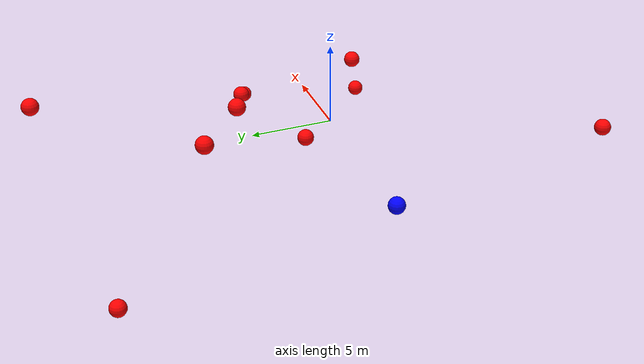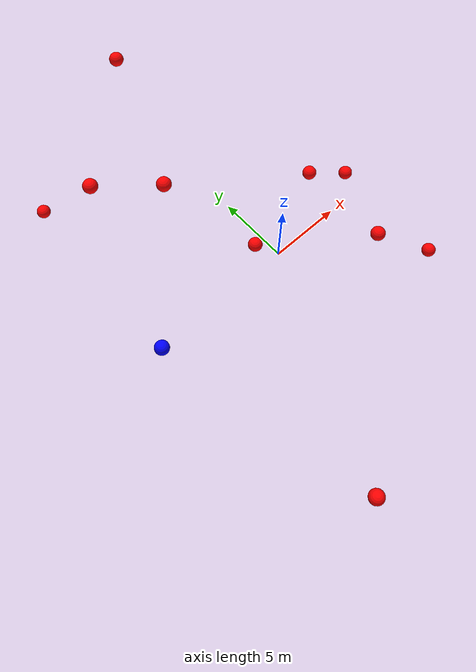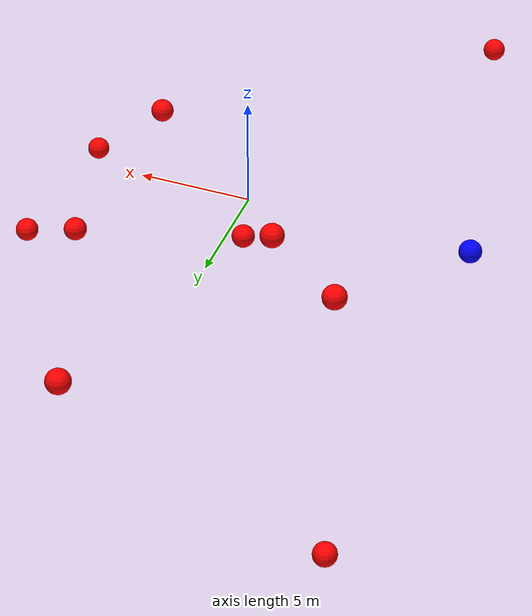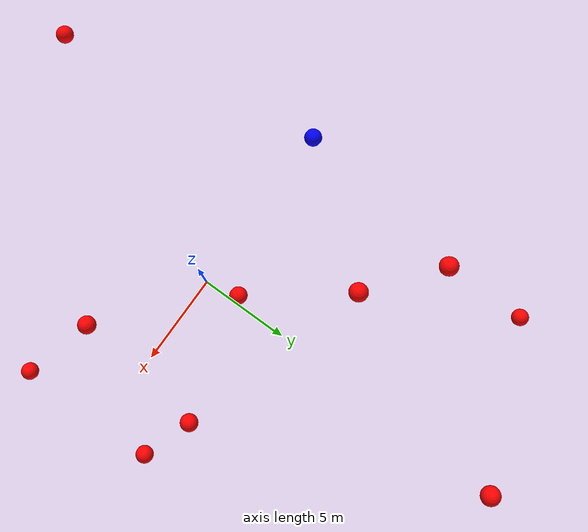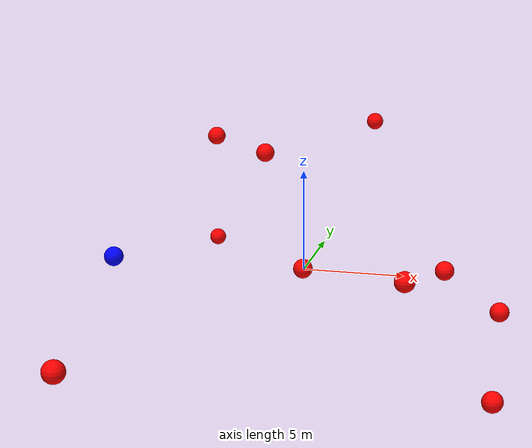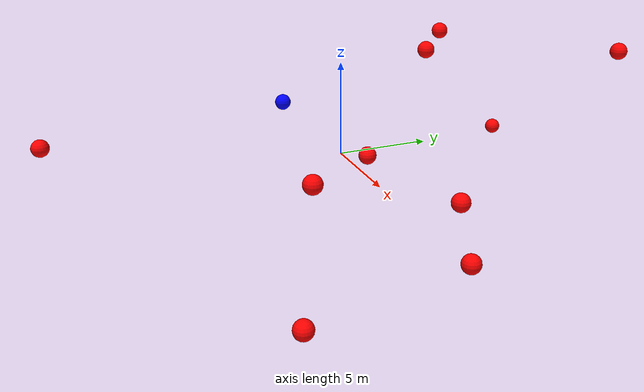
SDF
<?xml version="1.0" ?>
<sdf version="1.8">
    <world name="3d_world">
        <physics name="1ms" type="ode">
            <max_step_size>0.001</max_step_size>
            <real_time_factor>1.0</real_time_factor>
            <real_time_update_rate>1000.0</real_time_update_rate>
        </physics>
        <gravity>0 0 0</gravity>

        <plugin
            filename="gz-sim-physics-system"
            name="gz::sim::v8::systems::Physics">
        </plugin>
        <plugin
            filename="libignition-gazebo-user-commands-system.so"
            name="ignition::gazebo::systems::UserCommands">
        </plugin>
        <plugin
            filename="gz-sim-scene-broadcaster-system"
            name="gz::sim::systems::SceneBroadcaster">
        </plugin>
        <plugin
            filename="gz-sim-sensors-system"
            name="gz::sim::systems::Sensors">
            <render_engine>ogre2</render_engine>
        </plugin>

        <light type="directional" name="sun">
            <cast_shadows>true</cast_shadows>
            <pose>0 0 10 0 0 0</pose>
            <diffuse>0.8 0.8 0.8 1</diffuse>
            <specular>0.2 0.2 0.2 1</specular>
            <attenuation>
                <range>1000</range>
                <constant>0.9</constant>
                <linear>0.01</linear>
                <quadratic>0.001</quadratic>
            </attenuation>
            <direction>-0.5 0.1 -0.9</direction>
        </light>

        <!-- AGENTE -->
        <model name='agente' canonical_link='chassis'>
            <pose relative_to='world'>-10.0 0 0.0 0 0 0</pose>
            <link name='chassis'>
                <pose relative_to='__model__'>0.0 0 0.0 0 0 0</pose>
                <inertial>
                    <mass>1.14395</mass>
                    <inertia>
                        <ixx>0.095329</ixx>
                        <ixy>0</ixy>
                        <ixz>0</ixz>
                        <iyy>0.381317</iyy>
                        <iyz>0</iyz>
                        <izz>0.476646</izz>
                    </inertia>
                </inertial>
                <visual name='visual'>
                    <geometry>
                        <sphere>
                            <radius>0.5</radius>
                        </sphere>
                    </geometry>
                    <material>
                        <ambient>0.0 0.0 1.0 1</ambient>
                        <diffuse>0.0 0.0 1.0 1</diffuse>
                        <specular>0.0 0.0 1.0 1</specular>
                    </material>
                </visual>
                <collision name='collision'>
                    <geometry>
                        <sphere>
                            <radius>0.5</radius>
                        </sphere>
                    </geometry>
                </collision>
                <enable_gravity>false</enable_gravity>
            </link>

            <link name='lidar_link'>
                <pose relative_to='chassis'>0.0 0 0.1 0 0 0</pose>
                <inertial>
                    <mass>0.1</mass>
                    <inertia>
                        <ixx>0.000166667</ixx>
                        <iyy>0.000166667</iyy>
                        <izz>0.000166667</izz>
                    </inertia>
                </inertial>
                <collision name='collision'>
                    <geometry>
                        <cylinder>
                            <radius>0.05</radius>
                            <length>0.1</length>
                        </cylinder>
                    </geometry>
                </collision>
                <visual name='visual'>
                    <geometry>
                        <cylinder>
                            <radius>0.05</radius>
                            <length>0.1</length>
                        </cylinder>
                    </geometry>
                    <material>
                        <ambient>0.0 1.0 0.0 1</ambient>
                        <diffuse>0.0 1.0 0.0 1</diffuse>
                        <specular>0.0 1.0 0.0 1</specular>
                    </material>
                </visual>
                <sensor name="lidar" type="gpu_lidar">
                    <topic>scan</topic>
                    <update_rate>10</update_rate>
                    <lidar>
                        <scan>
                            <horizontal>
                                <samples>5000</samples>
                                <resolution>1</resolution>
                                <min_angle>-3.14159</min_angle>
                                <max_angle>3.14159</max_angle>
                            </horizontal>
                        </scan>
                        <range>
                            <min>0.1</min>
                            <max>10.0</max>
                            <resolution>0.01</resolution>
                        </range>
                    </lidar>
                    <visualize>true</visualize>
                    <always_on>true</always_on>
                    <update_rate>10</update_rate>
                    <pose_frame>lidar</pose_frame>
                </sensor>
                <enable_gravity>false</enable_gravity>
            </link>

            <joint name="lidar_joint" type="fixed">
                <parent>chassis</parent>
                <child>lidar_link</child>
            </joint>

            <plugin
                filename="ignition-gazebo-joint-state-publisher-system"
                name="ignition::gazebo::systems::JointStatePublisher">
            </plugin>
            <plugin
                filename="ignition-gazebo-odometry-publisher-system"
                name="ignition::gazebo::systems::OdometryPublisher">
                <dimensions>3</dimensions>
            </plugin>
            <plugin
                filename="ignition-gazebo-velocity-control-system"
                name="ignition::gazebo::systems::VelocityControl">
                <initial_linear>0.0 0 0</initial_linear>
                <initial_angular>0 0 0.0</initial_angular>
            </plugin>
            <plugin
                filename="libignition-gazebo-pose-publisher-system.so"
                name="ignition::gazebo::systems::PosePublisher">
                <topic>/agente/pose</topic>
                <frame_id>agente</frame_id>
                <update_rate>30</update_rate>
            </plugin>
        </model>

        <!-- OBSTACLE 1 -->
        <model name='obstacle_1' canonical_link='obstacle'>
            <static>false</static>
            <pose relative_to='world'>-3.71 6.94 4.24 0 0 0</pose>
            <link name='obstacle'>
                <pose relative_to='__model__'>0.0 0 0.0 0 0 0</pose>
                <visual name='visual'>
                    <geometry>
                        <sphere>
                            <radius>0.50</radius>
                        </sphere>
                    </geometry>
                    <material>
                        <ambient>1.0 0.0 0.0 1</ambient>
                        <diffuse>1.0 0.0 0.0 1</diffuse>
                        <specular>1.0 0.0 0.0 1</specular>
                    </material>
                </visual>
                <collision name='collision'>
                    <geometry>
                        <sphere>
                            <radius>0.50</radius>
                        </sphere>
                    </geometry>
                </collision>
                <enable_gravity>false</enable_gravity>
            </link>

            <plugin
                filename="ignition-gazebo-velocity-control-system"
                name="ignition::gazebo::systems::VelocityControl">
                <initial_linear>-0.02 -1.71 -1.04</initial_linear>
                <initial_angular>0 0 0</initial_angular>
            </plugin>

            <plugin
                filename="ignition-gazebo-odometry-publisher-system"
                name="ignition::gazebo::systems::OdometryPublisher">
                <dimensions>3</dimensions>
            </plugin>
        </model>

        <!-- OBSTACLE 2 -->
        <model name='obstacle_2' canonical_link='obstacle'>
            <static>false</static>
            <pose relative_to='world'>-9.08 15.47 -3.34 0 0 0</pose>
            <link name='obstacle'>
                <pose relative_to='__model__'>0.0 0 0.0 0 0 0</pose>
                <visual name='visual'>
                    <geometry>
                        <sphere>
                            <radius>0.50</radius>
                        </sphere>
                    </geometry>
                    <material>
                        <ambient>1.0 0.0 0.0 1</ambient>
                        <diffuse>1.0 0.0 0.0 1</diffuse>
                        <specular>1.0 0.0 0.0 1</specular>
                    </material>
                </visual>
                <collision name='collision'>
                    <geometry>
                        <sphere>
                            <radius>0.50</radius>
                        </sphere>
                    </geometry>
                </collision>
                <enable_gravity>false</enable_gravity>
            </link>

            <plugin
                filename="ignition-gazebo-velocity-control-system"
                name="ignition::gazebo::systems::VelocityControl">
                <initial_linear>1.22 -1.55 0.33</initial_linear>
                <initial_angular>0 0 0</initial_angular>
            </plugin>

            <plugin
                filename="ignition-gazebo-odometry-publisher-system"
                name="ignition::gazebo::systems::OdometryPublisher">
                <dimensions>3</dimensions>
            </plugin>
        </model>

        <!-- OBSTACLE 3 -->
        <model name='obstacle_3' canonical_link='obstacle'>
            <static>false</static>
            <pose relative_to='world'>9.89 -5.72 -3.68 0 0 0</pose>
            <link name='obstacle'>
                <pose relative_to='__model__'>0.0 0 0.0 0 0 0</pose>
                <visual name='visual'>
                    <geometry>
                        <sphere>
                            <radius>0.50</radius>
                        </sphere>
                    </geometry>
                    <material>
                        <ambient>1.0 0.0 0.0 1</ambient>
                        <diffuse>1.0 0.0 0.0 1</diffuse>
                        <specular>1.0 0.0 0.0 1</specular>
                    </material>
                </visual>
                <collision name='collision'>
                    <geometry>
                        <sphere>
                            <radius>0.50</radius>
                        </sphere>
                    </geometry>
                </collision>
                <enable_gravity>false</enable_gravity>
            </link>

            <plugin
                filename="ignition-gazebo-velocity-control-system"
                name="ignition::gazebo::systems::VelocityControl">
                <initial_linear>-0.79 0.95 0.61</initial_linear>
                <initial_angular>0 0 0</initial_angular>
            </plugin>

            <plugin
                filename="ignition-gazebo-odometry-publisher-system"
                name="ignition::gazebo::systems::OdometryPublisher">
                <dimensions>3</dimensions>
            </plugin>
        </model>

        <!-- OBSTACLE 4 -->
        <model name='obstacle_4' canonical_link='obstacle'>
            <static>false</static>
            <pose relative_to='world'>-0.44 1.77 -0.55 0 0 0</pose>
            <link name='obstacle'>
                <pose relative_to='__model__'>0.0 0 0.0 0 0 0</pose>
                <visual name='visual'>
                    <geometry>
                        <sphere>
                            <radius>0.50</radius>
                        </sphere>
                    </geometry>
                    <material>
                        <ambient>1.0 0.0 0.0 1</ambient>
                        <diffuse>1.0 0.0 0.0 1</diffuse>
                        <specular>1.0 0.0 0.0 1</specular>
                    </material>
                </visual>
                <collision name='collision'>
                    <geometry>
                        <sphere>
                            <radius>0.50</radius>
                        </sphere>
                    </geometry>
                </collision>
                <enable_gravity>false</enable_gravity>
            </link>

            <plugin
                filename="ignition-gazebo-velocity-control-system"
                name="ignition::gazebo::systems::VelocityControl">
                <initial_linear>-0.47 -0.55 0.17</initial_linear>
                <initial_angular>0 0 0</initial_angular>
            </plugin>

            <plugin
                filename="ignition-gazebo-odometry-publisher-system"
                name="ignition::gazebo::systems::OdometryPublisher">
                <dimensions>3</dimensions>
            </plugin>
        </model>

        <!-- OBSTACLE 5 -->
        <model name='obstacle_5' canonical_link='obstacle'>
            <static>false</static>
            <pose relative_to='world'>0.59 17.51 4.14 0 0 0</pose>
            <link name='obstacle'>
                <pose relative_to='__model__'>0.0 0 0.0 0 0 0</pose>
                <visual name='visual'>
                    <geometry>
                        <sphere>
                            <radius>0.50</radius>
                        </sphere>
                    </geometry>
                    <material>
                        <ambient>1.0 0.0 0.0 1</ambient>
                        <diffuse>1.0 0.0 0.0 1</diffuse>
                        <specular>1.0 0.0 0.0 1</specular>
                    </material>
                </visual>
                <collision name='collision'>
                    <geometry>
                        <sphere>
                            <radius>0.50</radius>
                        </sphere>
                    </geometry>
                </collision>
                <enable_gravity>false</enable_gravity>
            </link>

            <plugin
                filename="ignition-gazebo-velocity-control-system"
                name="ignition::gazebo::systems::VelocityControl">
                <initial_linear>0.61 -1.85 -0.44</initial_linear>
                <initial_angular>0 0 0</initial_angular>
            </plugin>

            <plugin
                filename="ignition-gazebo-odometry-publisher-system"
                name="ignition::gazebo::systems::OdometryPublisher">
                <dimensions>3</dimensions>
            </plugin>
        </model>

        <!-- OBSTACLE 6 -->
        <model name='obstacle_6' canonical_link='obstacle'>
            <static>false</static>
            <pose relative_to='world'>-6.71 -15.01 0.05 0 0 0</pose>
            <link name='obstacle'>
                <pose relative_to='__model__'>0.0 0 0.0 0 0 0</pose>
                <visual name='visual'>
                    <geometry>
                        <sphere>
                            <radius>0.50</radius>
                        </sphere>
                    </geometry>
                    <material>
                        <ambient>1.0 0.0 0.0 1</ambient>
                        <diffuse>1.0 0.0 0.0 1</diffuse>
                        <specular>1.0 0.0 0.0 1</specular>
                    </material>
                </visual>
                <collision name='collision'>
                    <geometry>
                        <sphere>
                            <radius>0.50</radius>
                        </sphere>
                    </geometry>
                </collision>
                <enable_gravity>false</enable_gravity>
            </link>

            <plugin
                filename="ignition-gazebo-velocity-control-system"
                name="ignition::gazebo::systems::VelocityControl">
                <initial_linear>0.56 1.92 -0.01</initial_linear>
                <initial_angular>0 0 0</initial_angular>
            </plugin>

            <plugin
                filename="ignition-gazebo-odometry-publisher-system"
                name="ignition::gazebo::systems::OdometryPublisher">
                <dimensions>3</dimensions>
            </plugin>
        </model>

        <!-- OBSTACLE 7 -->
        <model name='obstacle_7' canonical_link='obstacle'>
            <static>false</static>
            <pose relative_to='world'>-7.32 9.82 4.43 0 0 0</pose>
            <link name='obstacle'>
                <pose relative_to='__model__'>0.0 0 0.0 0 0 0</pose>
                <visual name='visual'>
                    <geometry>
                        <sphere>
                            <radius>0.50</radius>
                        </sphere>
                    </geometry>
                    <material>
                        <ambient>1.0 0.0 0.0 1</ambient>
                        <diffuse>1.0 0.0 0.0 1</diffuse>
                        <specular>1.0 0.0 0.0 1</specular>
                    </material>
                </visual>
                <collision name='collision'>
                    <geometry>
                        <sphere>
                            <radius>0.50</radius>
                        </sphere>
                    </geometry>
                </collision>
                <enable_gravity>false</enable_gravity>
            </link>

            <plugin
                filename="ignition-gazebo-velocity-control-system"
                name="ignition::gazebo::systems::VelocityControl">
                <initial_linear>1.54 -1.16 -0.52</initial_linear>
                <initial_angular>0 0 0</initial_angular>
            </plugin>

            <plugin
                filename="ignition-gazebo-odometry-publisher-system"
                name="ignition::gazebo::systems::OdometryPublisher">
                <dimensions>3</dimensions>
            </plugin>
        </model>

        <!-- OBSTACLE 8 -->
        <model name='obstacle_8' canonical_link='obstacle'>
            <static>false</static>
            <pose relative_to='world'>9.57 2.56 -2.41 0 0 0</pose>
            <link name='obstacle'>
                <pose relative_to='__model__'>0.0 0 0.0 0 0 0</pose>
                <visual name='visual'>
                    <geometry>
                        <sphere>
                            <radius>0.50</radius>
                        </sphere>
                    </geometry>
                    <material>
                        <ambient>1.0 0.0 0.0 1</ambient>
                        <diffuse>1.0 0.0 0.0 1</diffuse>
                        <specular>1.0 0.0 0.0 1</specular>
                    </material>
                </visual>
                <collision name='collision'>
                    <geometry>
                        <sphere>
                            <radius>0.50</radius>
                        </sphere>
                    </geometry>
                </collision>
                <enable_gravity>false</enable_gravity>
            </link>

            <plugin
                filename="ignition-gazebo-velocity-control-system"
                name="ignition::gazebo::systems::VelocityControl">
                <initial_linear>-1.10 -0.47 0.44</initial_linear>
                <initial_angular>0 0 0</initial_angular>
            </plugin>

            <plugin
                filename="ignition-gazebo-odometry-publisher-system"
                name="ignition::gazebo::systems::OdometryPublisher">
                <dimensions>3</dimensions>
            </plugin>
        </model>

        <!-- OBSTACLE 9 -->
        <model name='obstacle_9' canonical_link='obstacle'>
            <static>false</static>
            <pose relative_to='world'>5.56 -3.65 0.95 0 0 0</pose>
            <link name='obstacle'>
                <pose relative_to='__model__'>0.0 0 0.0 0 0 0</pose>
                <visual name='visual'>
                    <geometry>
                        <sphere>
                            <radius>0.50</radius>
                        </sphere>
                    </geometry>
                    <material>
                        <ambient>1.0 0.0 0.0 1</ambient>
                        <diffuse>1.0 0.0 0.0 1</diffuse>
                        <specular>1.0 0.0 0.0 1</specular>
                    </material>
                </visual>
                <collision name='collision'>
                    <geometry>
                        <sphere>
                            <radius>0.50</radius>
                        </sphere>
                    </geometry>
                </collision>
                <enable_gravity>false</enable_gravity>
            </link>

            <plugin
                filename="ignition-gazebo-velocity-control-system"
                name="ignition::gazebo::systems::VelocityControl">
                <initial_linear>-1.77 0.91 -0.24</initial_linear>
                <initial_angular>0 0 0</initial_angular>
            </plugin>

            <plugin
                filename="ignition-gazebo-odometry-publisher-system"
                name="ignition::gazebo::systems::OdometryPublisher">
                <dimensions>3</dimensions>
            </plugin>
        </model>

        <!-- OBSTACLE 10 -->
        <model name='obstacle_10' canonical_link='obstacle'>
            <static>false</static>
            <pose relative_to='world'>6.62 3.63 -0.76 0 0 0</pose>
            <link name='obstacle'>
                <pose relative_to='__model__'>0.0 0 0.0 0 0 0</pose>
                <visual name='visual'>
                    <geometry>
                        <sphere>
                            <radius>0.50</radius>
                        </sphere>
                    </geometry>
                    <material>
                        <ambient>1.0 0.0 0.0 1</ambient>
                        <diffuse>1.0 0.0 0.0 1</diffuse>
                        <specular>1.0 0.0 0.0 1</specular>
                    </material>
                </visual>
                <collision name='collision'>
                    <geometry>
                        <sphere>
                            <radius>0.50</radius>
                        </sphere>
                    </geometry>
                </collision>
                <enable_gravity>false</enable_gravity>
            </link>

            <plugin
                filename="ignition-gazebo-velocity-control-system"
                name="ignition::gazebo::systems::VelocityControl">
                <initial_linear>0.12 -0.52 0.11</initial_linear>
                <initial_angular>0 0 0</initial_angular>
            </plugin>

            <plugin
                filename="ignition-gazebo-odometry-publisher-system"
                name="ignition::gazebo::systems::OdometryPublisher">
                <dimensions>3</dimensions>
            </plugin>
        </model>

    </world>
</sdf>
